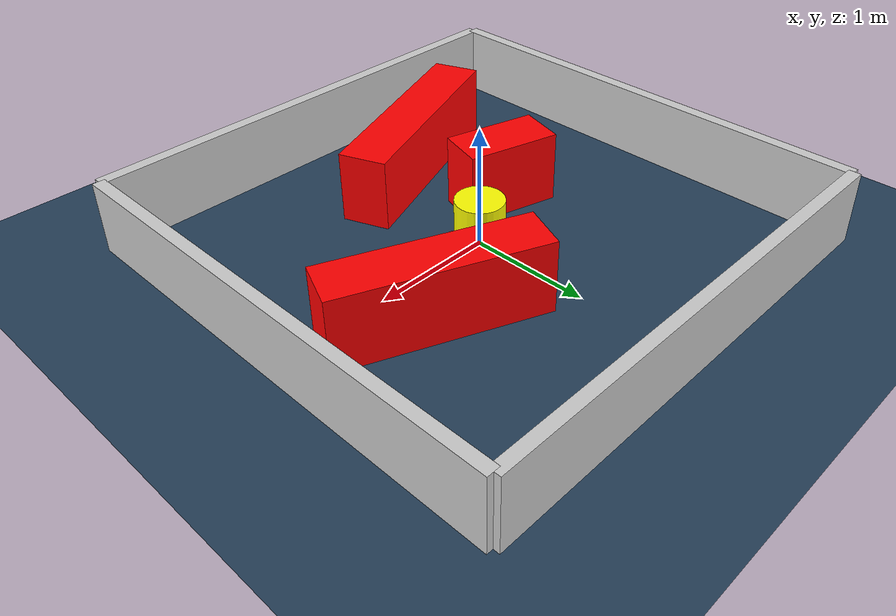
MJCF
<?xml version="1.0" ?>
<mujoco model="generated_environment">
  <option timestep="0.01" integrator="RK4" cone="elliptic"/>
  <default>
    <geom density="1"/>
  </default>
  <asset>
    <texture builtin="gradient" height="3072" rgb1="0.3 0.5 0.7" rgb2="0 0 0" type="skybox" width="512"/>
    <texture builtin="checker" height="300" mark="edge" markrgb="0.8 0.8 0.8" name="groundplane" rgb1="0.2 0.3 0.4" rgb2="0.1 0.2 0.3" type="2d" width="300"/>
    <material name="groundplane" reflectance="0.2" texrepeat="5 5" texture="groundplane" texuniform="true"/>
    <material name="robot" rgba="0.0 1.0 0.0 1"/>
  </asset>
  <worldbody>
    <light dir="0 0 -1" directional="true" pos="0 0 1.5"/>
    <geom condim="4" friction="1.0 0.005 0.001" material="groundplane" name="floor" size="0 0 0.05" type="plane"/>
    <body name="walls">
      <geom name="wall_1" condim="4" pos="-2.0 0.0 0.3" rgba="0.800000011920929 0.800000011920929 0.800000011920929 1.0" size="0.05 2.0 0.3" type="box"/>
      <geom name="wall_2" condim="4" pos="2.0 0.0 0.3" rgba="0.800000011920929 0.800000011920929 0.800000011920929 1.0" size="0.05 2.0 0.3" type="box"/>
      <geom name="wall_3" condim="4" pos="0.0 -2.0 0.3" rgba="0.800000011920929 0.800000011920929 0.800000011920929 1.0" size="2.0 0.05 0.3" type="box"/>
      <geom name="wall_4" condim="4" pos="0.0 2.0 0.3" rgba="0.800000011920929 0.800000011920929 0.800000011920929 1.0" size="2.0 0.05 0.3" type="box"/>
    </body>
    <body name="robot">
      <joint name="joint_x" type="slide" pos="0 0 0" axis="1 0 0"/>
      <joint name="joint_y" type="slide" pos="0 0 0" axis="0 1 0"/>
      <geom name="robot" type="sphere" pos="0.3 0.0 0.2" size="0.05" mass="5." friction="1.0 0.005 0.0001" condim="4" rgba="0.5 0.5 0.5 1.0"/>
      <site name="sensor_ball"/>
    </body>
    <body name="obstacle_movable_1">
      <geom name="obstacle_movable_1" condim="4" pos="0.0 0.0 0.2" euler="0 0 0.0" friction="1.0 0.005 0.001" rgba="1.0 1.0 0.0 1.0" size="0.2 0.2 0.0" type="cylinder" mass="0.1"/>
      <joint type="free"/>
    </body>
    <body name="obstacle_2_static">
      <geom name="obstacle_2_static" condim="4" pos="-0.4105285744972067 -1.1719340103675848 0.3" euler="0 0 201.16408107977102" friction="1.0 0.005 0.001" rgba="1 0 0 1" size="0.9129331914723584 0.2 0.3" type="box"/>
    </body>
    <body name="obstacle_3_static">
      <geom name="obstacle_3_static" condim="4" pos="0.9170443667202042 0.46166131237109886 0.3" euler="0 0 337.0369351985343" friction="1.0 0.005 0.001" rgba="1 0 0 1" size="0.8213630777364593 0.2 0.3" type="box"/>
    </body>
    <body name="obstacle_4_static">
      <geom name="obstacle_4_static" condim="4" pos="-0.5770340854419078 -0.3057176616208521 0.3" euler="0 0 344.5123049518762" friction="1.0 0.005 0.001" rgba="1 0 0 1" size="0.3896054747424593 0.2 0.3" type="box"/>
    </body>
  </worldbody>
  <actuator>
    <motor name="actuator_x" joint="joint_x" gear="1" ctrlrange="-1 1"/>
    <motor name="actuator_y" joint="joint_y" gear="1" ctrlrange="-1 1"/>
  </actuator>
</mujoco>
